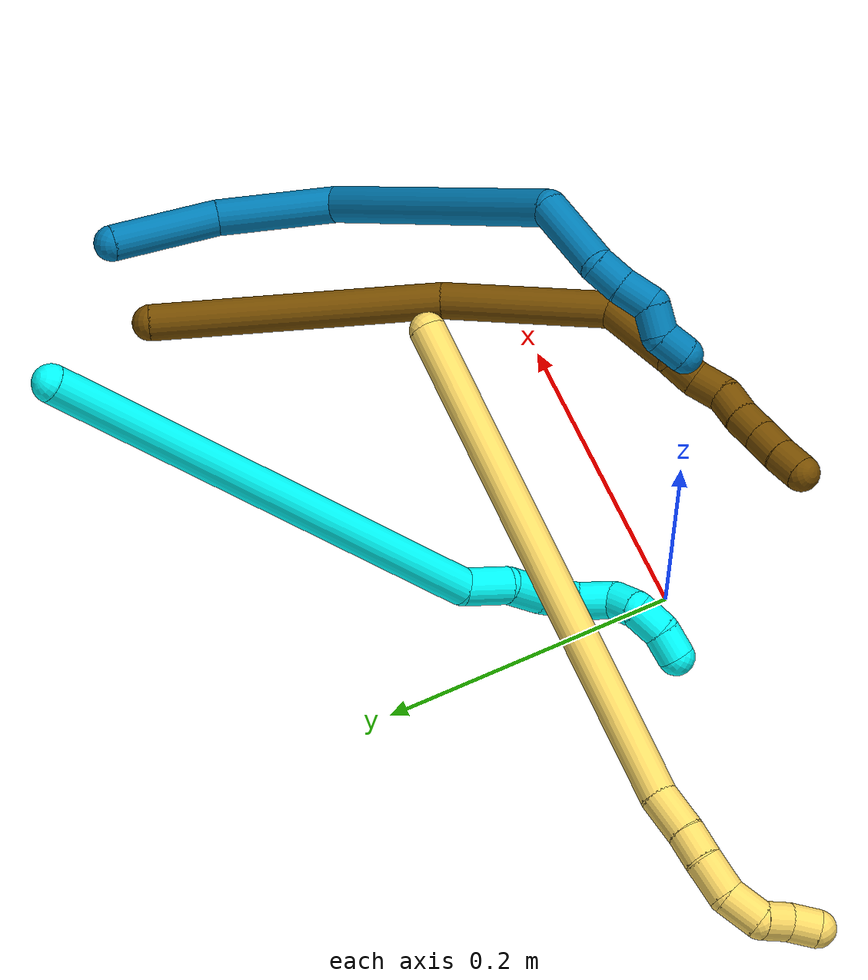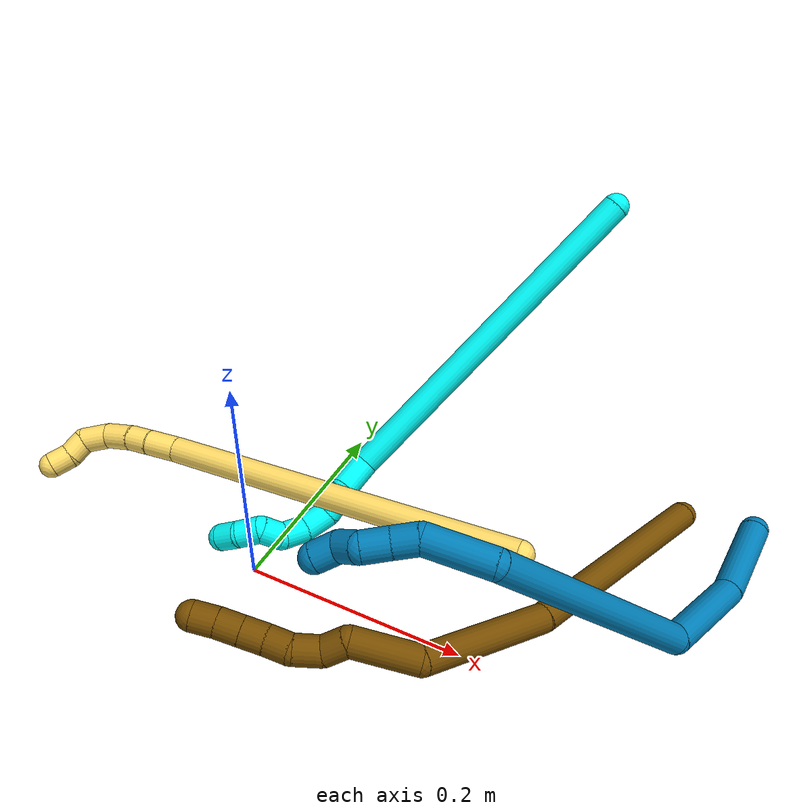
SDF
<sdf version="1.7">
 <world name="default">
  <model name="3">
   <static>0</static>
   <link name="3">
    <collision name="collision-cylinder-e_1_1_4">
     <pose>-0.02589 -0.025272 -0.159868 2.98481 -0.158614 -1.58243</pose>
     <geometry><cylinder><radius>0.0125</radius><length>0.327821</length></cylinder></geometry>
     <surface>
      <friction><ode><mu>1.16</mu><mu2>1.16</mu2><slip1>0</slip1><slip2>0</slip2></ode></friction>
      <contact><ode><kp>1e+06</kp><kd>1</kd><max_vel>0</max_vel><min_depth>0.001</min_depth></ode></contact>
     </surface>
    </collision>
    <visual name="visual-cylinder-e_1_1_4">
     <pose>-0.02589 -0.025272 -0.159868 2.98481 -0.158614 -1.58243</pose>
     <geometry><cylinder><radius>0.0125</radius><length>0.327821</length></cylinder></geometry>
     <material><ambient>0.003922 1 0.996078 1</ambient></material>
    </visual>
    <collision name="collision-cylinder-e_2_4_5">
     <pose>-0.048814 -0.057627 -0.333875 2.67725 0.185368 0.749143</pose>
     <geometry><cylinder><radius>0.0125</radius><length>0.032179</length></cylinder></geometry>
     <surface>
      <friction><ode><mu>1.16</mu><mu2>1.16</mu2><slip1>0</slip1><slip2>0</slip2></ode></friction>
      <contact><ode><kp>1e+06</kp><kd>1</kd><max_vel>0</max_vel><min_depth>0.001</min_depth></ode></contact>
     </surface>
    </collision>
    <visual name="visual-cylinder-e_2_4_5">
     <pose>-0.048814 -0.057627 -0.333875 2.67725 0.185368 0.749143</pose>
     <geometry><cylinder><radius>0.0125</radius><length>0.032179</length></cylinder></geometry>
     <material><ambient>0.003922 1 0.996078 1</ambient></material>
    </visual>
    <collision name="collision-cylinder-e_3_5_6">
     <pose>-0.045384 -0.066039 -0.362107 3.04752 0.032787 0.670327</pose>
     <geometry><cylinder><radius>0.0125</radius><length>0.028327</length></cylinder></geometry>
     <surface>
      <friction><ode><mu>1.16</mu><mu2>1.16</mu2><slip1>0</slip1><slip2>0</slip2></ode></friction>
      <contact><ode><kp>1e+06</kp><kd>1</kd><max_vel>0</max_vel><min_depth>0.001</min_depth></ode></contact>
     </surface>
    </collision>
    <visual name="visual-cylinder-e_3_5_6">
     <pose>-0.045384 -0.066039 -0.362107 3.04752 0.032787 0.670327</pose>
     <geometry><cylinder><radius>0.0125</radius><length>0.028327</length></cylinder></geometry>
     <material><ambient>0.003922 1 0.996078 1</ambient></material>
    </visual>
    <collision name="collision-cylinder-e_4_6_7">
     <pose>-0.0458 -0.074827 -0.387075 2.54037 -0.066647 -0.214243</pose>
     <geometry><cylinder><radius>0.0125</radius><length>0.026431</length></cylinder></geometry>
     <surface>
      <friction><ode><mu>1.16</mu><mu2>1.16</mu2><slip1>0</slip1><slip2>0</slip2></ode></friction>
      <contact><ode><kp>1e+06</kp><kd>1</kd><max_vel>0</max_vel><min_depth>0.001</min_depth></ode></contact>
     </surface>
    </collision>
    <visual name="visual-cylinder-e_4_6_7">
     <pose>-0.0458 -0.074827 -0.387075 2.54037 -0.066647 -0.214243</pose>
     <geometry><cylinder><radius>0.0125</radius><length>0.026431</length></cylinder></geometry>
     <material><ambient>0.003922 1 0.996078 1</ambient></material>
    </visual>
    <collision name="collision-cylinder-e_5_7_8">
     <pose>-0.047016 -0.092401 -0.404244 2.12754 -0.028177 -0.05072</pose>
     <geometry><cylinder><radius>0.0125</radius><length>0.023838</length></cylinder></geometry>
     <surface>
      <friction><ode><mu>1.16</mu><mu2>1.16</mu2><slip1>0</slip1><slip2>0</slip2></ode></friction>
      <contact><ode><kp>1e+06</kp><kd>1</kd><max_vel>0</max_vel><min_depth>0.001</min_depth></ode></contact>
     </surface>
    </collision>
    <visual name="visual-cylinder-e_5_7_8">
     <pose>-0.047016 -0.092401 -0.404244 2.12754 -0.028177 -0.05072</pose>
     <geometry><cylinder><radius>0.0125</radius><length>0.023838</length></cylinder></geometry>
     <material><ambient>0.003922 1 0.996078 1</ambient></material>
    </visual>
    <collision name="collision-cylinder-e_6_8_9">
     <pose>-0.052483 -0.111023 -0.411833 1.72164 -0.537714 -0.620443</pose>
     <geometry><cylinder><radius>0.0125</radius><length>0.020037</length></cylinder></geometry>
     <surface>
      <friction><ode><mu>1.16</mu><mu2>1.16</mu2><slip1>0</slip1><slip2>0</slip2></ode></friction>
      <contact><ode><kp>1e+06</kp><kd>1</kd><max_vel>0</max_vel><min_depth>0.001</min_depth></ode></contact>
     </surface>
    </collision>
    <visual name="visual-cylinder-e_6_8_9">
     <pose>-0.052483 -0.111023 -0.411833 1.72164 -0.537714 -0.620443</pose>
     <geometry><cylinder><radius>0.0125</radius><length>0.020037</length></cylinder></geometry>
     <material><ambient>0.003922 1 0.996078 1</ambient></material>
    </visual>
    <collision name="collision-cylinder-e_7_9_10">
     <pose>-0.063997 -0.123491 -0.420688 2.65902 -0.64206 -1.86742</pose>
     <geometry><cylinder><radius>0.0125</radius><length>0.021319</length></cylinder></geometry>
     <surface>
      <friction><ode><mu>1.16</mu><mu2>1.16</mu2><slip1>0</slip1><slip2>0</slip2></ode></friction>
      <contact><ode><kp>1e+06</kp><kd>1</kd><max_vel>0</max_vel><min_depth>0.001</min_depth></ode></contact>
     </surface>
    </collision>
    <visual name="visual-cylinder-e_7_9_10">
     <pose>-0.063997 -0.123491 -0.420688 2.65902 -0.64206 -1.86742</pose>
     <geometry><cylinder><radius>0.0125</radius><length>0.021319</length></cylinder></geometry>
     <material><ambient>0.003922 1 0.996078 1</ambient></material>
    </visual>
    <collision name="collision-cylinder-e_8_10_2">
     <pose>-0.077819 -0.128351 -0.434909 3.00758 -0.836172 -2.84176</pose>
     <geometry><cylinder><radius>0.0125</radius><length>0.020048</length></cylinder></geometry>
     <surface>
      <friction><ode><mu>1.16</mu><mu2>1.16</mu2><slip1>0</slip1><slip2>0</slip2></ode></friction>
      <contact><ode><kp>1e+06</kp><kd>1</kd><max_vel>0</max_vel><min_depth>0.001</min_depth></ode></contact>
     </surface>
    </collision>
    <visual name="visual-cylinder-e_8_10_2">
     <pose>-0.077819 -0.128351 -0.434909 3.00758 -0.836172 -2.84176</pose>
     <geometry><cylinder><radius>0.0125</radius><length>0.020048</length></cylinder></geometry>
     <material><ambient>0.003922 1 0.996078 1</ambient></material>
    </visual>
    <collision name="collision-sphere-2">
     <pose>-0.085258 -0.129249 -0.441568 0 -0 0</pose>
     <geometry><sphere><radius>0.0125</radius></sphere></geometry>
     <surface>
      <friction><ode><mu>1.16</mu><mu2>1.16</mu2><slip1>0</slip1><slip2>0</slip2></ode></friction>
      <contact><ode><kp>1e+06</kp><kd>1</kd><max_vel>0</max_vel><min_depth>0.001</min_depth></ode></contact>
     </surface>
    </collision>
    <visual name="visual-sphere-2">
     <pose>-0.085258 -0.129249 -0.441568 0 -0 0</pose>
     <geometry><sphere><radius>0.0125</radius></sphere></geometry>
     <material><ambient>0.003922 1 0.996078 1</ambient></material>
    </visual>
    <collision name="collision-sphere-10">
     <pose>-0.070381 -0.127453 -0.42825 0 -0 0</pose>
     <geometry><sphere><radius>0.0125</radius></sphere></geometry>
     <surface>
      <friction><ode><mu>1.16</mu><mu2>1.16</mu2><slip1>0</slip1><slip2>0</slip2></ode></friction>
      <contact><ode><kp>1e+06</kp><kd>1</kd><max_vel>0</max_vel><min_depth>0.001</min_depth></ode></contact>
     </surface>
    </collision>
    <visual name="visual-sphere-10">
     <pose>-0.070381 -0.127453 -0.42825 0 -0 0</pose>
     <geometry><sphere><radius>0.0125</radius></sphere></geometry>
     <material><ambient>0.003922 1 0.996078 1</ambient></material>
    </visual>
    <collision name="collision-sphere-9">
     <pose>-0.057614 -0.11953 -0.413126 0 -0 0</pose>
     <geometry><sphere><radius>0.0125</radius></sphere></geometry>
     <surface>
      <friction><ode><mu>1.16</mu><mu2>1.16</mu2><slip1>0</slip1><slip2>0</slip2></ode></friction>
      <contact><ode><kp>1e+06</kp><kd>1</kd><max_vel>0</max_vel><min_depth>0.001</min_depth></ode></contact>
     </surface>
    </collision>
    <visual name="visual-sphere-9">
     <pose>-0.057614 -0.11953 -0.413126 0 -0 0</pose>
     <geometry><sphere><radius>0.0125</radius></sphere></geometry>
     <material><ambient>0.003922 1 0.996078 1</ambient></material>
    </visual>
    <collision name="collision-sphere-4">
     <pose>-0.051779 -0.050545 -0.319736 0 -0 0</pose>
     <geometry><sphere><radius>0.0125</radius></sphere></geometry>
     <surface>
      <friction><ode><mu>1.16</mu><mu2>1.16</mu2><slip1>0</slip1><slip2>0</slip2></ode></friction>
      <contact><ode><kp>1e+06</kp><kd>1</kd><max_vel>0</max_vel><min_depth>0.001</min_depth></ode></contact>
     </surface>
    </collision>
    <visual name="visual-sphere-4">
     <pose>-0.051779 -0.050545 -0.319736 0 -0 0</pose>
     <geometry><sphere><radius>0.0125</radius></sphere></geometry>
     <material><ambient>0.003922 1 0.996078 1</ambient></material>
    </visual>
    <collision name="collision-sphere-1">
     <geometry><sphere><radius>0.0125</radius></sphere></geometry>
     <surface>
      <friction><ode><mu>1.16</mu><mu2>1.16</mu2><slip1>0</slip1><slip2>0</slip2></ode></friction>
      <contact><ode><kp>1e+06</kp><kd>1</kd><max_vel>0</max_vel><min_depth>0.001</min_depth></ode></contact>
     </surface>
    </collision>
    <visual name="visual-sphere-1">
     <geometry><sphere><radius>0.0125</radius></sphere></geometry>
     <material><ambient>0.003922 1 0.996078 1</ambient></material>
    </visual>
    <collision name="collision-sphere-8">
     <pose>-0.047352 -0.102516 -0.41054 0 -0 0</pose>
     <geometry><sphere><radius>0.0125</radius></sphere></geometry>
     <surface>
      <friction><ode><mu>1.16</mu><mu2>1.16</mu2><slip1>0</slip1><slip2>0</slip2></ode></friction>
      <contact><ode><kp>1e+06</kp><kd>1</kd><max_vel>0</max_vel><min_depth>0.001</min_depth></ode></contact>
     </surface>
    </collision>
    <visual name="visual-sphere-8">
     <pose>-0.047352 -0.102516 -0.41054 0 -0 0</pose>
     <geometry><sphere><radius>0.0125</radius></sphere></geometry>
     <material><ambient>0.003922 1 0.996078 1</ambient></material>
    </visual>
    <collision name="collision-sphere-5">
     <pose>-0.045848 -0.064709 -0.348014 0 -0 0</pose>
     <geometry><sphere><radius>0.0125</radius></sphere></geometry>
     <surface>
      <friction><ode><mu>1.16</mu><mu2>1.16</mu2><slip1>0</slip1><slip2>0</slip2></ode></friction>
      <contact><ode><kp>1e+06</kp><kd>1</kd><max_vel>0</max_vel><min_depth>0.001</min_depth></ode></contact>
     </surface>
    </collision>
    <visual name="visual-sphere-5">
     <pose>-0.045848 -0.064709 -0.348014 0 -0 0</pose>
     <geometry><sphere><radius>0.0125</radius></sphere></geometry>
     <material><ambient>0.003922 1 0.996078 1</ambient></material>
    </visual>
    <collision name="collision-sphere-6">
     <pose>-0.04492 -0.067368 -0.376201 0 -0 0</pose>
     <geometry><sphere><radius>0.0125</radius></sphere></geometry>
     <surface>
      <friction><ode><mu>1.16</mu><mu2>1.16</mu2><slip1>0</slip1><slip2>0</slip2></ode></friction>
      <contact><ode><kp>1e+06</kp><kd>1</kd><max_vel>0</max_vel><min_depth>0.001</min_depth></ode></contact>
     </surface>
    </collision>
    <visual name="visual-sphere-6">
     <pose>-0.04492 -0.067368 -0.376201 0 -0 0</pose>
     <geometry><sphere><radius>0.0125</radius></sphere></geometry>
     <material><ambient>0.003922 1 0.996078 1</ambient></material>
    </visual>
    <collision name="collision-sphere-7">
     <pose>-0.04668 -0.082286 -0.397948 0 -0 0</pose>
     <geometry><sphere><radius>0.0125</radius></sphere></geometry>
     <surface>
      <friction><ode><mu>1.16</mu><mu2>1.16</mu2><slip1>0</slip1><slip2>0</slip2></ode></friction>
      <contact><ode><kp>1e+06</kp><kd>1</kd><max_vel>0</max_vel><min_depth>0.001</min_depth></ode></contact>
     </surface>
    </collision>
    <visual name="visual-sphere-7">
     <pose>-0.04668 -0.082286 -0.397948 0 -0 0</pose>
     <geometry><sphere><radius>0.0125</radius></sphere></geometry>
     <material><ambient>0.003922 1 0.996078 1</ambient></material>
    </visual>
    <inertial>
     <pose>-0.035302 -0.047242 -0.238432 0 -0 0</pose>
     <mass>0.5</mass>
     <inertia>
      <ixx>-0.002941</ixx>
      <ixy>0</ixy>
      <ixz>0</ixz>
      <iyy>-0.002819</iyy>
      <iyz>0</iyz>
      <izz>0.000895</izz>
     </inertia>
    </inertial>
   </link>
   <pose>0.192241 0.338042 0.250887 -0.740741 -0.037232 -0.437017</pose>
  </model>
  <model name="5">
   <static>0</static>
   <link name="5">
    <collision name="collision-cylinder-e_1_1_4">
     <pose>-0.159364 0.072279 0.031239 -1.16284 -1.11189 0.775327</pose>
     <geometry><cylinder><radius>0.0125</radius><length>0.355511</length></cylinder></geometry>
     <surface>
      <friction><ode><mu>1.16</mu><mu2>1.16</mu2><slip1>0</slip1><slip2>0</slip2></ode></friction>
      <contact><ode><kp>1e+06</kp><kd>1</kd><max_vel>0</max_vel><min_depth>0.001</min_depth></ode></contact>
     </surface>
    </collision>
    <visual name="visual-cylinder-e_1_1_4">
     <pose>-0.159364 0.072279 0.031239 -1.16284 -1.11189 0.775327</pose>
     <geometry><cylinder><radius>0.0125</radius><length>0.355511</length></cylinder></geometry>
     <material><ambient>1 0.858824 0.4 1</ambient></material>
    </visual>
    <collision name="collision-cylinder-e_2_4_5">
     <pose>-0.332988 0.148891 0.063005 -1.4498 -1.27374 1.16004</pose>
     <geometry><cylinder><radius>0.0125</radius><length>0.029825</length></cylinder></geometry>
     <surface>
      <friction><ode><mu>1.16</mu><mu2>1.16</mu2><slip1>0</slip1><slip2>0</slip2></ode></friction>
      <contact><ode><kp>1e+06</kp><kd>1</kd><max_vel>0</max_vel><min_depth>0.001</min_depth></ode></contact>
     </surface>
    </collision>
    <visual name="visual-cylinder-e_2_4_5">
     <pose>-0.332988 0.148891 0.063005 -1.4498 -1.27374 1.16004</pose>
     <geometry><cylinder><radius>0.0125</radius><length>0.029825</length></cylinder></geometry>
     <material><ambient>1 0.858824 0.4 1</ambient></material>
    </visual>
    <collision name="collision-cylinder-e_3_5_6">
     <pose>-0.357169 0.157122 0.064508 -1.32549 -1.18593 0.968395</pose>
     <geometry><cylinder><radius>0.0125</radius><length>0.02141</length></cylinder></geometry>
     <surface>
      <friction><ode><mu>1.16</mu><mu2>1.16</mu2><slip1>0</slip1><slip2>0</slip2></ode></friction>
      <contact><ode><kp>1e+06</kp><kd>1</kd><max_vel>0</max_vel><min_depth>0.001</min_depth></ode></contact>
     </surface>
    </collision>
    <visual name="visual-cylinder-e_3_5_6">
     <pose>-0.357169 0.157122 0.064508 -1.32549 -1.18593 0.968395</pose>
     <geometry><cylinder><radius>0.0125</radius><length>0.02141</length></cylinder></geometry>
     <material><ambient>1 0.858824 0.4 1</ambient></material>
    </visual>
    <collision name="collision-cylinder-e_4_6_7">
     <pose>-0.379011 0.167378 0.065677 -1.54036 -1.08073 1.05406</pose>
     <geometry><cylinder><radius>0.0125</radius><length>0.027022</length></cylinder></geometry>
     <surface>
      <friction><ode><mu>1.16</mu><mu2>1.16</mu2><slip1>0</slip1><slip2>0</slip2></ode></friction>
      <contact><ode><kp>1e+06</kp><kd>1</kd><max_vel>0</max_vel><min_depth>0.001</min_depth></ode></contact>
     </surface>
    </collision>
    <visual name="visual-cylinder-e_4_6_7">
     <pose>-0.379011 0.167378 0.065677 -1.54036 -1.08073 1.05406</pose>
     <geometry><cylinder><radius>0.0125</radius><length>0.027022</length></cylinder></geometry>
     <material><ambient>1 0.858824 0.4 1</ambient></material>
    </visual>
    <collision name="collision-cylinder-e_5_7_8">
     <pose>-0.401707 0.179654 0.06135 -2.22297 -0.965939 1.62927</pose>
     <geometry><cylinder><radius>0.0125</radius><length>0.026197</length></cylinder></geometry>
     <surface>
      <friction><ode><mu>1.16</mu><mu2>1.16</mu2><slip1>0</slip1><slip2>0</slip2></ode></friction>
      <contact><ode><kp>1e+06</kp><kd>1</kd><max_vel>0</max_vel><min_depth>0.001</min_depth></ode></contact>
     </surface>
    </collision>
    <visual name="visual-cylinder-e_5_7_8">
     <pose>-0.401707 0.179654 0.06135 -2.22297 -0.965939 1.62927</pose>
     <geometry><cylinder><radius>0.0125</radius><length>0.026197</length></cylinder></geometry>
     <material><ambient>1 0.858824 0.4 1</ambient></material>
    </visual>
    <collision name="collision-cylinder-e_6_8_9">
     <pose>-0.415295 0.190419 0.048528 -2.61324 -0.284761 0.974631</pose>
     <geometry><cylinder><radius>0.0125</radius><length>0.020032</length></cylinder></geometry>
     <surface>
      <friction><ode><mu>1.16</mu><mu2>1.16</mu2><slip1>0</slip1><slip2>0</slip2></ode></friction>
      <contact><ode><kp>1e+06</kp><kd>1</kd><max_vel>0</max_vel><min_depth>0.001</min_depth></ode></contact>
     </surface>
    </collision>
    <visual name="visual-cylinder-e_6_8_9">
     <pose>-0.415295 0.190419 0.048528 -2.61324 -0.284761 0.974631</pose>
     <geometry><cylinder><radius>0.0125</radius><length>0.020032</length></cylinder></geometry>
     <material><ambient>1 0.858824 0.4 1</ambient></material>
    </visual>
    <collision name="collision-cylinder-e_7_9_2">
     <pose>-0.42397 0.198972 0.03302 -2.6665 -0.626183 1.85731</pose>
     <geometry><cylinder><radius>0.0125</radius><length>0.020003</length></cylinder></geometry>
     <surface>
      <friction><ode><mu>1.16</mu><mu2>1.16</mu2><slip1>0</slip1><slip2>0</slip2></ode></friction>
      <contact><ode><kp>1e+06</kp><kd>1</kd><max_vel>0</max_vel><min_depth>0.001</min_depth></ode></contact>
     </surface>
    </collision>
    <visual name="visual-cylinder-e_7_9_2">
     <pose>-0.42397 0.198972 0.03302 -2.6665 -0.626183 1.85731</pose>
     <geometry><cylinder><radius>0.0125</radius><length>0.020003</length></cylinder></geometry>
     <material><ambient>1 0.858824 0.4 1</ambient></material>
    </visual>
    <collision name="collision-sphere-2">
     <pose>-0.429832 0.202679 0.025813 0 -0 0</pose>
     <geometry><sphere><radius>0.0125</radius></sphere></geometry>
     <surface>
      <friction><ode><mu>1.16</mu><mu2>1.16</mu2><slip1>0</slip1><slip2>0</slip2></ode></friction>
      <contact><ode><kp>1e+06</kp><kd>1</kd><max_vel>0</max_vel><min_depth>0.001</min_depth></ode></contact>
     </surface>
    </collision>
    <visual name="visual-sphere-2">
     <pose>-0.429832 0.202679 0.025813 0 -0 0</pose>
     <geometry><sphere><radius>0.0125</radius></sphere></geometry>
     <material><ambient>1 0.858824 0.4 1</ambient></material>
    </visual>
    <collision name="collision-sphere-9">
     <pose>-0.418109 0.195265 0.040226 0 -0 0</pose>
     <geometry><sphere><radius>0.0125</radius></sphere></geometry>
     <surface>
      <friction><ode><mu>1.16</mu><mu2>1.16</mu2><slip1>0</slip1><slip2>0</slip2></ode></friction>
      <contact><ode><kp>1e+06</kp><kd>1</kd><max_vel>0</max_vel><min_depth>0.001</min_depth></ode></contact>
     </surface>
    </collision>
    <visual name="visual-sphere-9">
     <pose>-0.418109 0.195265 0.040226 0 -0 0</pose>
     <geometry><sphere><radius>0.0125</radius></sphere></geometry>
     <material><ambient>1 0.858824 0.4 1</ambient></material>
    </visual>
    <collision name="collision-sphere-4">
     <pose>-0.318728 0.144558 0.062478 0 -0 0</pose>
     <geometry><sphere><radius>0.0125</radius></sphere></geometry>
     <surface>
      <friction><ode><mu>1.16</mu><mu2>1.16</mu2><slip1>0</slip1><slip2>0</slip2></ode></friction>
      <contact><ode><kp>1e+06</kp><kd>1</kd><max_vel>0</max_vel><min_depth>0.001</min_depth></ode></contact>
     </surface>
    </collision>
    <visual name="visual-sphere-4">
     <pose>-0.318728 0.144558 0.062478 0 -0 0</pose>
     <geometry><sphere><radius>0.0125</radius></sphere></geometry>
     <material><ambient>1 0.858824 0.4 1</ambient></material>
    </visual>
    <collision name="collision-sphere-1">
     <geometry><sphere><radius>0.0125</radius></sphere></geometry>
     <surface>
      <friction><ode><mu>1.16</mu><mu2>1.16</mu2><slip1>0</slip1><slip2>0</slip2></ode></friction>
      <contact><ode><kp>1e+06</kp><kd>1</kd><max_vel>0</max_vel><min_depth>0.001</min_depth></ode></contact>
     </surface>
    </collision>
    <visual name="visual-sphere-1">
     <geometry><sphere><radius>0.0125</radius></sphere></geometry>
     <material><ambient>1 0.858824 0.4 1</ambient></material>
    </visual>
    <collision name="collision-sphere-8">
     <pose>-0.412481 0.185573 0.05683 0 -0 0</pose>
     <geometry><sphere><radius>0.0125</radius></sphere></geometry>
     <surface>
      <friction><ode><mu>1.16</mu><mu2>1.16</mu2><slip1>0</slip1><slip2>0</slip2></ode></friction>
      <contact><ode><kp>1e+06</kp><kd>1</kd><max_vel>0</max_vel><min_depth>0.001</min_depth></ode></contact>
     </surface>
    </collision>
    <visual name="visual-sphere-8">
     <pose>-0.412481 0.185573 0.05683 0 -0 0</pose>
     <geometry><sphere><radius>0.0125</radius></sphere></geometry>
     <material><ambient>1 0.858824 0.4 1</ambient></material>
    </visual>
    <collision name="collision-sphere-5">
     <pose>-0.347247 0.153224 0.063532 0 -0 0</pose>
     <geometry><sphere><radius>0.0125</radius></sphere></geometry>
     <surface>
      <friction><ode><mu>1.16</mu><mu2>1.16</mu2><slip1>0</slip1><slip2>0</slip2></ode></friction>
      <contact><ode><kp>1e+06</kp><kd>1</kd><max_vel>0</max_vel><min_depth>0.001</min_depth></ode></contact>
     </surface>
    </collision>
    <visual name="visual-sphere-5">
     <pose>-0.347247 0.153224 0.063532 0 -0 0</pose>
     <geometry><sphere><radius>0.0125</radius></sphere></geometry>
     <material><ambient>1 0.858824 0.4 1</ambient></material>
    </visual>
    <collision name="collision-sphere-6">
     <pose>-0.367091 0.161021 0.065484 0 -0 0</pose>
     <geometry><sphere><radius>0.0125</radius></sphere></geometry>
     <surface>
      <friction><ode><mu>1.16</mu><mu2>1.16</mu2><slip1>0</slip1><slip2>0</slip2></ode></friction>
      <contact><ode><kp>1e+06</kp><kd>1</kd><max_vel>0</max_vel><min_depth>0.001</min_depth></ode></contact>
     </surface>
    </collision>
    <visual name="visual-sphere-6">
     <pose>-0.367091 0.161021 0.065484 0 -0 0</pose>
     <geometry><sphere><radius>0.0125</radius></sphere></geometry>
     <material><ambient>1 0.858824 0.4 1</ambient></material>
    </visual>
    <collision name="collision-sphere-7">
     <pose>-0.390932 0.173734 0.065871 0 -0 0</pose>
     <geometry><sphere><radius>0.0125</radius></sphere></geometry>
     <surface>
      <friction><ode><mu>1.16</mu><mu2>1.16</mu2><slip1>0</slip1><slip2>0</slip2></ode></friction>
      <contact><ode><kp>1e+06</kp><kd>1</kd><max_vel>0</max_vel><min_depth>0.001</min_depth></ode></contact>
     </surface>
    </collision>
    <visual name="visual-sphere-7">
     <pose>-0.390932 0.173734 0.065871 0 -0 0</pose>
     <geometry><sphere><radius>0.0125</radius></sphere></geometry>
     <material><ambient>1 0.858824 0.4 1</ambient></material>
    </visual>
    <inertial>
     <pose>-0.223598 0.101049 0.038761 0 -0 0</pose>
     <mass>0.5</mass>
     <inertia>
      <ixx>0.002329</ixx>
      <ixy>0</ixy>
      <ixz>0</ixz>
      <iyy>0.004426</iyy>
      <iyz>0</iyz>
      <izz>0.001848</izz>
     </inertia>
    </inertial>
   </link>
   <pose>0.219472 0.073208 0.059552 -1.45472 0.332803 0.227434</pose>
  </model>
  <model name="9">
   <static>0</static>
   <link name="9">
    <collision name="collision-cylinder-e_1_1_4">
     <pose>0.02603 -0.024144 0.013184 1.07097 0.75778 0.463919</pose>
     <geometry><cylinder><radius>0.0125</radius><length>0.075745</length></cylinder></geometry>
     <surface>
      <friction><ode><mu>1.16</mu><mu2>1.16</mu2><slip1>0</slip1><slip2>0</slip2></ode></friction>
      <contact><ode><kp>1e+06</kp><kd>1</kd><max_vel>0</max_vel><min_depth>0.001</min_depth></ode></contact>
     </surface>
    </collision>
    <visual name="visual-cylinder-e_1_1_4">
     <pose>0.02603 -0.024144 0.013184 1.07097 0.75778 0.463919</pose>
     <geometry><cylinder><radius>0.0125</radius><length>0.075745</length></cylinder></geometry>
     <material><ambient>0 0.490196 0.709804 1</ambient></material>
    </visual>
    <collision name="collision-cylinder-e_2_4_5">
     <pose>0.074508 -0.071092 0.052472 0.718043 0.574712 0.220918</pose>
     <geometry><cylinder><radius>0.0125</radius><length>0.08259</length></cylinder></geometry>
     <surface>
      <friction><ode><mu>1.16</mu><mu2>1.16</mu2><slip1>0</slip1><slip2>0</slip2></ode></friction>
      <contact><ode><kp>1e+06</kp><kd>1</kd><max_vel>0</max_vel><min_depth>0.001</min_depth></ode></contact>
     </surface>
    </collision>
    <visual name="visual-cylinder-e_2_4_5">
     <pose>0.074508 -0.071092 0.052472 0.718043 0.574712 0.220918</pose>
     <geometry><cylinder><radius>0.0125</radius><length>0.08259</length></cylinder></geometry>
     <material><ambient>0 0.490196 0.709804 1</ambient></material>
    </visual>
    <collision name="collision-cylinder-e_3_5_6">
     <pose>0.112034 -0.09761 0.177719 0.03745 0.150821 0.00283</pose>
     <geometry><cylinder><radius>0.0125</radius><length>0.200706</length></cylinder></geometry>
     <surface>
      <friction><ode><mu>1.16</mu><mu2>1.16</mu2><slip1>0</slip1><slip2>0</slip2></ode></friction>
      <contact><ode><kp>1e+06</kp><kd>1</kd><max_vel>0</max_vel><min_depth>0.001</min_depth></ode></contact>
     </surface>
    </collision>
    <visual name="visual-cylinder-e_3_5_6">
     <pose>0.112034 -0.09761 0.177719 0.03745 0.150821 0.00283</pose>
     <geometry><cylinder><radius>0.0125</radius><length>0.200706</length></cylinder></geometry>
     <material><ambient>0 0.490196 0.709804 1</ambient></material>
    </visual>
    <collision name="collision-cylinder-e_4_6_7">
     <pose>0.115108 -0.111452 0.299699 0.417399 -0.447944 -0.096411</pose>
     <geometry><cylinder><radius>0.0125</radius><length>0.05543</length></cylinder></geometry>
     <surface>
      <friction><ode><mu>1.16</mu><mu2>1.16</mu2><slip1>0</slip1><slip2>0</slip2></ode></friction>
      <contact><ode><kp>1e+06</kp><kd>1</kd><max_vel>0</max_vel><min_depth>0.001</min_depth></ode></contact>
     </surface>
    </collision>
    <visual name="visual-cylinder-e_4_6_7">
     <pose>0.115108 -0.111452 0.299699 0.417399 -0.447944 -0.096411</pose>
     <geometry><cylinder><radius>0.0125</radius><length>0.05543</length></cylinder></geometry>
     <material><ambient>0 0.490196 0.709804 1</ambient></material>
    </visual>
    <collision name="collision-cylinder-e_5_7_8">
     <pose>0.100571 -0.129478 0.329266 0.865099 -0.239382 -0.110942</pose>
     <geometry><cylinder><radius>0.0125</radius><length>0.021366</length></cylinder></geometry>
     <surface>
      <friction><ode><mu>1.16</mu><mu2>1.16</mu2><slip1>0</slip1><slip2>0</slip2></ode></friction>
      <contact><ode><kp>1e+06</kp><kd>1</kd><max_vel>0</max_vel><min_depth>0.001</min_depth></ode></contact>
     </surface>
    </collision>
    <visual name="visual-cylinder-e_5_7_8">
     <pose>0.100571 -0.129478 0.329266 0.865099 -0.239382 -0.110942</pose>
     <geometry><cylinder><radius>0.0125</radius><length>0.021366</length></cylinder></geometry>
     <material><ambient>0 0.490196 0.709804 1</ambient></material>
    </visual>
    <collision name="collision-cylinder-e_6_8_9">
     <pose>0.096678 -0.145504 0.344069 0.788779 -0.118228 -0.049253</pose>
     <geometry><cylinder><radius>0.0125</radius><length>0.02307</length></cylinder></geometry>
     <surface>
      <friction><ode><mu>1.16</mu><mu2>1.16</mu2><slip1>0</slip1><slip2>0</slip2></ode></friction>
      <contact><ode><kp>1e+06</kp><kd>1</kd><max_vel>0</max_vel><min_depth>0.001</min_depth></ode></contact>
     </surface>
    </collision>
    <visual name="visual-cylinder-e_6_8_9">
     <pose>0.096678 -0.145504 0.344069 0.788779 -0.118228 -0.049253</pose>
     <geometry><cylinder><radius>0.0125</radius><length>0.02307</length></cylinder></geometry>
     <material><ambient>0 0.490196 0.709804 1</ambient></material>
    </visual>
    <collision name="collision-cylinder-e_7_9_10">
     <pose>0.088071 -0.160253 0.355139 1.1457 -0.783872 -0.52106</pose>
     <geometry><cylinder><radius>0.0125</radius><length>0.020527</length></cylinder></geometry>
     <surface>
      <friction><ode><mu>1.16</mu><mu2>1.16</mu2><slip1>0</slip1><slip2>0</slip2></ode></friction>
      <contact><ode><kp>1e+06</kp><kd>1</kd><max_vel>0</max_vel><min_depth>0.001</min_depth></ode></contact>
     </surface>
    </collision>
    <visual name="visual-cylinder-e_7_9_10">
     <pose>0.088071 -0.160253 0.355139 1.1457 -0.783872 -0.52106</pose>
     <geometry><cylinder><radius>0.0125</radius><length>0.020527</length></cylinder></geometry>
     <material><ambient>0 0.490196 0.709804 1</ambient></material>
    </visual>
    <collision name="collision-cylinder-e_8_10_2">
     <pose>0.079638 -0.176049 0.362627 1.11568 -0.115597 -0.072175</pose>
     <geometry><cylinder><radius>0.0125</radius><length>0.020566</length></cylinder></geometry>
     <surface>
      <friction><ode><mu>1.16</mu><mu2>1.16</mu2><slip1>0</slip1><slip2>0</slip2></ode></friction>
      <contact><ode><kp>1e+06</kp><kd>1</kd><max_vel>0</max_vel><min_depth>0.001</min_depth></ode></contact>
     </surface>
    </collision>
    <visual name="visual-cylinder-e_8_10_2">
     <pose>0.079638 -0.176049 0.362627 1.11568 -0.115597 -0.072175</pose>
     <geometry><cylinder><radius>0.0125</radius><length>0.020566</length></cylinder></geometry>
     <material><ambient>0 0.490196 0.709804 1</ambient></material>
    </visual>
    <collision name="collision-sphere-2">
     <pose>0.078452 -0.185223 0.367117 0 -0 0</pose>
     <geometry><sphere><radius>0.0125</radius></sphere></geometry>
     <surface>
      <friction><ode><mu>1.16</mu><mu2>1.16</mu2><slip1>0</slip1><slip2>0</slip2></ode></friction>
      <contact><ode><kp>1e+06</kp><kd>1</kd><max_vel>0</max_vel><min_depth>0.001</min_depth></ode></contact>
     </surface>
    </collision>
    <visual name="visual-sphere-2">
     <pose>0.078452 -0.185223 0.367117 0 -0 0</pose>
     <geometry><sphere><radius>0.0125</radius></sphere></geometry>
     <material><ambient>0 0.490196 0.709804 1</ambient></material>
    </visual>
    <collision name="collision-sphere-10">
     <pose>0.080824 -0.166874 0.358137 0 -0 0</pose>
     <geometry><sphere><radius>0.0125</radius></sphere></geometry>
     <surface>
      <friction><ode><mu>1.16</mu><mu2>1.16</mu2><slip1>0</slip1><slip2>0</slip2></ode></friction>
      <contact><ode><kp>1e+06</kp><kd>1</kd><max_vel>0</max_vel><min_depth>0.001</min_depth></ode></contact>
     </surface>
    </collision>
    <visual name="visual-sphere-10">
     <pose>0.080824 -0.166874 0.358137 0 -0 0</pose>
     <geometry><sphere><radius>0.0125</radius></sphere></geometry>
     <material><ambient>0 0.490196 0.709804 1</ambient></material>
    </visual>
    <collision name="collision-sphere-9">
     <pose>0.095317 -0.153631 0.352141 0 -0 0</pose>
     <geometry><sphere><radius>0.0125</radius></sphere></geometry>
     <surface>
      <friction><ode><mu>1.16</mu><mu2>1.16</mu2><slip1>0</slip1><slip2>0</slip2></ode></friction>
      <contact><ode><kp>1e+06</kp><kd>1</kd><max_vel>0</max_vel><min_depth>0.001</min_depth></ode></contact>
     </surface>
    </collision>
    <visual name="visual-sphere-9">
     <pose>0.095317 -0.153631 0.352141 0 -0 0</pose>
     <geometry><sphere><radius>0.0125</radius></sphere></geometry>
     <material><ambient>0 0.490196 0.709804 1</ambient></material>
    </visual>
    <collision name="collision-sphere-4">
     <pose>0.05206 -0.048288 0.026369 0 -0 0</pose>
     <geometry><sphere><radius>0.0125</radius></sphere></geometry>
     <surface>
      <friction><ode><mu>1.16</mu><mu2>1.16</mu2><slip1>0</slip1><slip2>0</slip2></ode></friction>
      <contact><ode><kp>1e+06</kp><kd>1</kd><max_vel>0</max_vel><min_depth>0.001</min_depth></ode></contact>
     </surface>
    </collision>
    <visual name="visual-sphere-4">
     <pose>0.05206 -0.048288 0.026369 0 -0 0</pose>
     <geometry><sphere><radius>0.0125</radius></sphere></geometry>
     <material><ambient>0 0.490196 0.709804 1</ambient></material>
    </visual>
    <collision name="collision-sphere-1">
     <geometry><sphere><radius>0.0125</radius></sphere></geometry>
     <surface>
      <friction><ode><mu>1.16</mu><mu2>1.16</mu2><slip1>0</slip1><slip2>0</slip2></ode></friction>
      <contact><ode><kp>1e+06</kp><kd>1</kd><max_vel>0</max_vel><min_depth>0.001</min_depth></ode></contact>
     </surface>
    </collision>
    <visual name="visual-sphere-1">
     <geometry><sphere><radius>0.0125</radius></sphere></geometry>
     <material><ambient>0 0.490196 0.709804 1</ambient></material>
    </visual>
    <collision name="collision-sphere-8">
     <pose>0.098038 -0.137377 0.335997 0 -0 0</pose>
     <geometry><sphere><radius>0.0125</radius></sphere></geometry>
     <surface>
      <friction><ode><mu>1.16</mu><mu2>1.16</mu2><slip1>0</slip1><slip2>0</slip2></ode></friction>
      <contact><ode><kp>1e+06</kp><kd>1</kd><max_vel>0</max_vel><min_depth>0.001</min_depth></ode></contact>
     </surface>
    </collision>
    <visual name="visual-sphere-8">
     <pose>0.098038 -0.137377 0.335997 0 -0 0</pose>
     <geometry><sphere><radius>0.0125</radius></sphere></geometry>
     <material><ambient>0 0.490196 0.709804 1</ambient></material>
    </visual>
    <collision name="collision-sphere-5">
     <pose>0.096956 -0.093895 0.078575 0 -0 0</pose>
     <geometry><sphere><radius>0.0125</radius></sphere></geometry>
     <surface>
      <friction><ode><mu>1.16</mu><mu2>1.16</mu2><slip1>0</slip1><slip2>0</slip2></ode></friction>
      <contact><ode><kp>1e+06</kp><kd>1</kd><max_vel>0</max_vel><min_depth>0.001</min_depth></ode></contact>
     </surface>
    </collision>
    <visual name="visual-sphere-5">
     <pose>0.096956 -0.093895 0.078575 0 -0 0</pose>
     <geometry><sphere><radius>0.0125</radius></sphere></geometry>
     <material><ambient>0 0.490196 0.709804 1</ambient></material>
    </visual>
    <collision name="collision-sphere-6">
     <pose>0.127112 -0.101325 0.276863 0 -0 0</pose>
     <geometry><sphere><radius>0.0125</radius></sphere></geometry>
     <surface>
      <friction><ode><mu>1.16</mu><mu2>1.16</mu2><slip1>0</slip1><slip2>0</slip2></ode></friction>
      <contact><ode><kp>1e+06</kp><kd>1</kd><max_vel>0</max_vel><min_depth>0.001</min_depth></ode></contact>
     </surface>
    </collision>
    <visual name="visual-sphere-6">
     <pose>0.127112 -0.101325 0.276863 0 -0 0</pose>
     <geometry><sphere><radius>0.0125</radius></sphere></geometry>
     <material><ambient>0 0.490196 0.709804 1</ambient></material>
    </visual>
    <collision name="collision-sphere-7">
     <pose>0.103104 -0.121578 0.322535 0 -0 0</pose>
     <geometry><sphere><radius>0.0125</radius></sphere></geometry>
     <surface>
      <friction><ode><mu>1.16</mu><mu2>1.16</mu2><slip1>0</slip1><slip2>0</slip2></ode></friction>
      <contact><ode><kp>1e+06</kp><kd>1</kd><max_vel>0</max_vel><min_depth>0.001</min_depth></ode></contact>
     </surface>
    </collision>
    <visual name="visual-sphere-7">
     <pose>0.103104 -0.121578 0.322535 0 -0 0</pose>
     <geometry><sphere><radius>0.0125</radius></sphere></geometry>
     <material><ambient>0 0.490196 0.709804 1</ambient></material>
    </visual>
    <inertial>
     <pose>0.089633 -0.093005 0.174669 0 -0 0</pose>
     <mass>0.5</mass>
     <inertia><ixx>0.000789</ixx><ixy>0</ixy><ixz>0</ixz><iyy>0.000776</iyy><iyz>0</iyz><izz>-3e-05</izz></inertia>
    </inertial>
   </link>
   <pose>0.387583 0.233741 0.021561 0.888845 -0.211148 -0.916133</pose>
  </model>
  <model name="12">
   <static>0</static>
   <link name="12">
    <collision name="collision-cylinder-e_1_1_4">
     <pose>-0.077059 -0.013735 -0.061227 2.92091 -0.887401 -2.68358</pose>
     <geometry><cylinder><radius>0.0125</radius><length>0.19875</length></cylinder></geometry>
     <surface>
      <friction><ode><mu>1.16</mu><mu2>1.16</mu2><slip1>0</slip1><slip2>0</slip2></ode></friction>
      <contact><ode><kp>1e+06</kp><kd>1</kd><max_vel>0</max_vel><min_depth>0.001</min_depth></ode></contact>
     </surface>
    </collision>
    <visual name="visual-cylinder-e_1_1_4">
     <pose>-0.077059 -0.013735 -0.061227 2.92091 -0.887401 -2.68358</pose>
     <geometry><cylinder><radius>0.0125</radius><length>0.19875</length></cylinder></geometry>
     <material><ambient>0.466667 0.301961 0 1</ambient></material>
    </visual>
    <collision name="collision-cylinder-e_2_4_5">
     <pose>-0.190224 -0.041614 -0.166436 2.83047 -0.663361 -2.28699</pose>
     <geometry><cylinder><radius>0.0125</radius><length>0.117273</length></cylinder></geometry>
     <surface>
      <friction><ode><mu>1.16</mu><mu2>1.16</mu2><slip1>0</slip1><slip2>0</slip2></ode></friction>
      <contact><ode><kp>1e+06</kp><kd>1</kd><max_vel>0</max_vel><min_depth>0.001</min_depth></ode></contact>
     </surface>
    </collision>
    <visual name="visual-cylinder-e_2_4_5">
     <pose>-0.190224 -0.041614 -0.166436 2.83047 -0.663361 -2.28699</pose>
     <geometry><cylinder><radius>0.0125</radius><length>0.117273</length></cylinder></geometry>
     <material><ambient>0.466667 0.301961 0 1</ambient></material>
    </visual>
    <collision name="collision-cylinder-e_3_5_6">
     <pose>-0.228922 -0.073582 -0.232473 2.46185 -0.091144 -0.256529</pose>
     <geometry><cylinder><radius>0.0125</radius><length>0.056949</length></cylinder></geometry>
     <surface>
      <friction><ode><mu>1.16</mu><mu2>1.16</mu2><slip1>0</slip1><slip2>0</slip2></ode></friction>
      <contact><ode><kp>1e+06</kp><kd>1</kd><max_vel>0</max_vel><min_depth>0.001</min_depth></ode></contact>
     </surface>
    </collision>
    <visual name="visual-cylinder-e_3_5_6">
     <pose>-0.228922 -0.073582 -0.232473 2.46185 -0.091144 -0.256529</pose>
     <geometry><cylinder><radius>0.0125</radius><length>0.056949</length></cylinder></geometry>
     <material><ambient>0.466667 0.301961 0 1</ambient></material>
    </visual>
    <collision name="collision-cylinder-e_4_6_7">
     <pose>-0.237399 -0.100284 -0.257298 1.87332 -0.564173 -0.750737</pose>
     <geometry><cylinder><radius>0.0125</radius><length>0.022011</length></cylinder></geometry>
     <surface>
      <friction><ode><mu>1.16</mu><mu2>1.16</mu2><slip1>0</slip1><slip2>0</slip2></ode></friction>
      <contact><ode><kp>1e+06</kp><kd>1</kd><max_vel>0</max_vel><min_depth>0.001</min_depth></ode></contact>
     </surface>
    </collision>
    <visual name="visual-cylinder-e_4_6_7">
     <pose>-0.237399 -0.100284 -0.257298 1.87332 -0.564173 -0.750737</pose>
     <geometry><cylinder><radius>0.0125</radius><length>0.022011</length></cylinder></geometry>
     <material><ambient>0.466667 0.301961 0 1</ambient></material>
    </visual>
    <collision name="collision-cylinder-e_5_7_8">
     <pose>-0.246771 -0.116205 -0.269189 2.48407 -0.293854 -0.818629</pose>
     <geometry><cylinder><radius>0.0125</radius><length>0.02408</length></cylinder></geometry>
     <surface>
      <friction><ode><mu>1.16</mu><mu2>1.16</mu2><slip1>0</slip1><slip2>0</slip2></ode></friction>
      <contact><ode><kp>1e+06</kp><kd>1</kd><max_vel>0</max_vel><min_depth>0.001</min_depth></ode></contact>
     </surface>
    </collision>
    <visual name="visual-cylinder-e_5_7_8">
     <pose>-0.246771 -0.116205 -0.269189 2.48407 -0.293854 -0.818629</pose>
     <geometry><cylinder><radius>0.0125</radius><length>0.02408</length></cylinder></geometry>
     <material><ambient>0.466667 0.301961 0 1</ambient></material>
    </visual>
    <collision name="collision-cylinder-e_6_8_9">
     <pose>-0.249764 -0.130901 -0.285015 2.29026 0.048474 0.106834</pose>
     <geometry><cylinder><radius>0.0125</radius><length>0.020374</length></cylinder></geometry>
     <surface>
      <friction><ode><mu>1.16</mu><mu2>1.16</mu2><slip1>0</slip1><slip2>0</slip2></ode></friction>
      <contact><ode><kp>1e+06</kp><kd>1</kd><max_vel>0</max_vel><min_depth>0.001</min_depth></ode></contact>
     </surface>
    </collision>
    <visual name="visual-cylinder-e_6_8_9">
     <pose>-0.249764 -0.130901 -0.285015 2.29026 0.048474 0.106834</pose>
     <geometry><cylinder><radius>0.0125</radius><length>0.020374</length></cylinder></geometry>
     <material><ambient>0.466667 0.301961 0 1</ambient></material>
    </visual>
    <collision name="collision-cylinder-e_7_9_10">
     <pose>-0.249389 -0.145246 -0.299329 2.42015 -0.011711 -0.031042</pose>
     <geometry><cylinder><radius>0.0125</radius><length>0.020267</length></cylinder></geometry>
     <surface>
      <friction><ode><mu>1.16</mu><mu2>1.16</mu2><slip1>0</slip1><slip2>0</slip2></ode></friction>
      <contact><ode><kp>1e+06</kp><kd>1</kd><max_vel>0</max_vel><min_depth>0.001</min_depth></ode></contact>
     </surface>
    </collision>
    <visual name="visual-cylinder-e_7_9_10">
     <pose>-0.249389 -0.145246 -0.299329 2.42015 -0.011711 -0.031042</pose>
     <geometry><cylinder><radius>0.0125</radius><length>0.020267</length></cylinder></geometry>
     <material><ambient>0.466667 0.301961 0 1</ambient></material>
    </visual>
    <collision name="collision-cylinder-e_8_10_11">
     <pose>-0.249541 -0.158655 -0.314412 2.40963 -0.003248 -0.008476</pose>
     <geometry><cylinder><radius>0.0125</radius><length>0.020098</length></cylinder></geometry>
     <surface>
      <friction><ode><mu>1.16</mu><mu2>1.16</mu2><slip1>0</slip1><slip2>0</slip2></ode></friction>
      <contact><ode><kp>1e+06</kp><kd>1</kd><max_vel>0</max_vel><min_depth>0.001</min_depth></ode></contact>
     </surface>
    </collision>
    <visual name="visual-cylinder-e_8_10_11">
     <pose>-0.249541 -0.158655 -0.314412 2.40963 -0.003248 -0.008476</pose>
     <geometry><cylinder><radius>0.0125</radius><length>0.020098</length></cylinder></geometry>
     <material><ambient>0.466667 0.301961 0 1</ambient></material>
    </visual>
    <collision name="collision-cylinder-e_9_11_2">
     <pose>-0.250447 -0.171841 -0.329593 2.44317 -0.086623 -0.236923</pose>
     <geometry><cylinder><radius>0.0125</radius><length>0.020199</length></cylinder></geometry>
     <surface>
      <friction><ode><mu>1.16</mu><mu2>1.16</mu2><slip1>0</slip1><slip2>0</slip2></ode></friction>
      <contact><ode><kp>1e+06</kp><kd>1</kd><max_vel>0</max_vel><min_depth>0.001</min_depth></ode></contact>
     </surface>
    </collision>
    <visual name="visual-cylinder-e_9_11_2">
     <pose>-0.250447 -0.171841 -0.329593 2.44317 -0.086623 -0.236923</pose>
     <geometry><cylinder><radius>0.0125</radius><length>0.020199</length></cylinder></geometry>
     <material><ambient>0.466667 0.301961 0 1</ambient></material>
    </visual>
    <collision name="collision-sphere-2">
     <pose>-0.251321 -0.17831 -0.337299 0 -0 0</pose>
     <geometry><sphere><radius>0.0125</radius></sphere></geometry>
     <surface>
      <friction><ode><mu>1.16</mu><mu2>1.16</mu2><slip1>0</slip1><slip2>0</slip2></ode></friction>
      <contact><ode><kp>1e+06</kp><kd>1</kd><max_vel>0</max_vel><min_depth>0.001</min_depth></ode></contact>
     </surface>
    </collision>
    <visual name="visual-sphere-2">
     <pose>-0.251321 -0.17831 -0.337299 0 -0 0</pose>
     <geometry><sphere><radius>0.0125</radius></sphere></geometry>
     <material><ambient>0.466667 0.301961 0 1</ambient></material>
    </visual>
    <collision name="collision-sphere-11">
     <pose>-0.249573 -0.165371 -0.321887 0 -0 0</pose>
     <geometry><sphere><radius>0.0125</radius></sphere></geometry>
     <surface>
      <friction><ode><mu>1.16</mu><mu2>1.16</mu2><slip1>0</slip1><slip2>0</slip2></ode></friction>
      <contact><ode><kp>1e+06</kp><kd>1</kd><max_vel>0</max_vel><min_depth>0.001</min_depth></ode></contact>
     </surface>
    </collision>
    <visual name="visual-sphere-11">
     <pose>-0.249573 -0.165371 -0.321887 0 -0 0</pose>
     <geometry><sphere><radius>0.0125</radius></sphere></geometry>
     <material><ambient>0.466667 0.301961 0 1</ambient></material>
    </visual>
    <collision name="collision-sphere-10">
     <pose>-0.249508 -0.151939 -0.306937 0 -0 0</pose>
     <geometry><sphere><radius>0.0125</radius></sphere></geometry>
     <surface>
      <friction><ode><mu>1.16</mu><mu2>1.16</mu2><slip1>0</slip1><slip2>0</slip2></ode></friction>
      <contact><ode><kp>1e+06</kp><kd>1</kd><max_vel>0</max_vel><min_depth>0.001</min_depth></ode></contact>
     </surface>
    </collision>
    <visual name="visual-sphere-10">
     <pose>-0.249508 -0.151939 -0.306937 0 -0 0</pose>
     <geometry><sphere><radius>0.0125</radius></sphere></geometry>
     <material><ambient>0.466667 0.301961 0 1</ambient></material>
    </visual>
    <collision name="collision-sphere-9">
     <pose>-0.249271 -0.138554 -0.29172 0 -0 0</pose>
     <geometry><sphere><radius>0.0125</radius></sphere></geometry>
     <surface>
      <friction><ode><mu>1.16</mu><mu2>1.16</mu2><slip1>0</slip1><slip2>0</slip2></ode></friction>
      <contact><ode><kp>1e+06</kp><kd>1</kd><max_vel>0</max_vel><min_depth>0.001</min_depth></ode></contact>
     </surface>
    </collision>
    <visual name="visual-sphere-9">
     <pose>-0.249271 -0.138554 -0.29172 0 -0 0</pose>
     <geometry><sphere><radius>0.0125</radius></sphere></geometry>
     <material><ambient>0.466667 0.301961 0 1</ambient></material>
    </visual>
    <collision name="collision-sphere-4">
     <pose>-0.154117 -0.027471 -0.122453 0 -0 0</pose>
     <geometry><sphere><radius>0.0125</radius></sphere></geometry>
     <surface>
      <friction><ode><mu>1.16</mu><mu2>1.16</mu2><slip1>0</slip1><slip2>0</slip2></ode></friction>
      <contact><ode><kp>1e+06</kp><kd>1</kd><max_vel>0</max_vel><min_depth>0.001</min_depth></ode></contact>
     </surface>
    </collision>
    <visual name="visual-sphere-4">
     <pose>-0.154117 -0.027471 -0.122453 0 -0 0</pose>
     <geometry><sphere><radius>0.0125</radius></sphere></geometry>
     <material><ambient>0.466667 0.301961 0 1</ambient></material>
    </visual>
    <collision name="collision-sphere-1">
     <geometry><sphere><radius>0.0125</radius></sphere></geometry>
     <surface>
      <friction><ode><mu>1.16</mu><mu2>1.16</mu2><slip1>0</slip1><slip2>0</slip2></ode></friction>
      <contact><ode><kp>1e+06</kp><kd>1</kd><max_vel>0</max_vel><min_depth>0.001</min_depth></ode></contact>
     </surface>
    </collision>
    <visual name="visual-sphere-1">
     <geometry><sphere><radius>0.0125</radius></sphere></geometry>
     <material><ambient>0.466667 0.301961 0 1</ambient></material>
    </visual>
    <collision name="collision-sphere-8">
     <pose>-0.250258 -0.123247 -0.27831 0 -0 0</pose>
     <geometry><sphere><radius>0.0125</radius></sphere></geometry>
     <surface>
      <friction><ode><mu>1.16</mu><mu2>1.16</mu2><slip1>0</slip1><slip2>0</slip2></ode></friction>
      <contact><ode><kp>1e+06</kp><kd>1</kd><max_vel>0</max_vel><min_depth>0.001</min_depth></ode></contact>
     </surface>
    </collision>
    <visual name="visual-sphere-8">
     <pose>-0.250258 -0.123247 -0.27831 0 -0 0</pose>
     <geometry><sphere><radius>0.0125</radius></sphere></geometry>
     <material><ambient>0.466667 0.301961 0 1</ambient></material>
    </visual>
    <collision name="collision-sphere-5">
     <pose>-0.22633 -0.055758 -0.210419 0 -0 0</pose>
     <geometry><sphere><radius>0.0125</radius></sphere></geometry>
     <surface>
      <friction><ode><mu>1.16</mu><mu2>1.16</mu2><slip1>0</slip1><slip2>0</slip2></ode></friction>
      <contact><ode><kp>1e+06</kp><kd>1</kd><max_vel>0</max_vel><min_depth>0.001</min_depth></ode></contact>
     </surface>
    </collision>
    <visual name="visual-sphere-5">
     <pose>-0.22633 -0.055758 -0.210419 0 -0 0</pose>
     <geometry><sphere><radius>0.0125</radius></sphere></geometry>
     <material><ambient>0.466667 0.301961 0 1</ambient></material>
    </visual>
    <collision name="collision-sphere-6">
     <pose>-0.231514 -0.091407 -0.254527 0 -0 0</pose>
     <geometry><sphere><radius>0.0125</radius></sphere></geometry>
     <surface>
      <friction><ode><mu>1.16</mu><mu2>1.16</mu2><slip1>0</slip1><slip2>0</slip2></ode></friction>
      <contact><ode><kp>1e+06</kp><kd>1</kd><max_vel>0</max_vel><min_depth>0.001</min_depth></ode></contact>
     </surface>
    </collision>
    <visual name="visual-sphere-6">
     <pose>-0.231514 -0.091407 -0.254527 0 -0 0</pose>
     <geometry><sphere><radius>0.0125</radius></sphere></geometry>
     <material><ambient>0.466667 0.301961 0 1</ambient></material>
    </visual>
    <collision name="collision-sphere-7">
     <pose>-0.243283 -0.109162 -0.260068 0 -0 0</pose>
     <geometry><sphere><radius>0.0125</radius></sphere></geometry>
     <surface>
      <friction><ode><mu>1.16</mu><mu2>1.16</mu2><slip1>0</slip1><slip2>0</slip2></ode></friction>
      <contact><ode><kp>1e+06</kp><kd>1</kd><max_vel>0</max_vel><min_depth>0.001</min_depth></ode></contact>
     </surface>
    </collision>
    <visual name="visual-sphere-7">
     <pose>-0.243283 -0.109162 -0.260068 0 -0 0</pose>
     <geometry><sphere><radius>0.0125</radius></sphere></geometry>
     <material><ambient>0.466667 0.301961 0 1</ambient></material>
    </visual>
    <inertial>
     <pose>-0.16409 -0.058153 -0.163843 0 -0 0</pose>
     <mass>0.5</mass>
     <inertia>
      <ixx>-0.000716</ixx>
      <ixy>0</ixy>
      <ixz>0</ixz>
      <iyy>0.000429</iyy>
      <iyz>0</iyz>
      <izz>0.000719</izz>
     </inertia>
    </inertial>
   </link>
   <pose>0.32466 0.232369 0.013199 2.51944 -0.428678 1.68871</pose>
  </model>
 </world>
</sdf>
